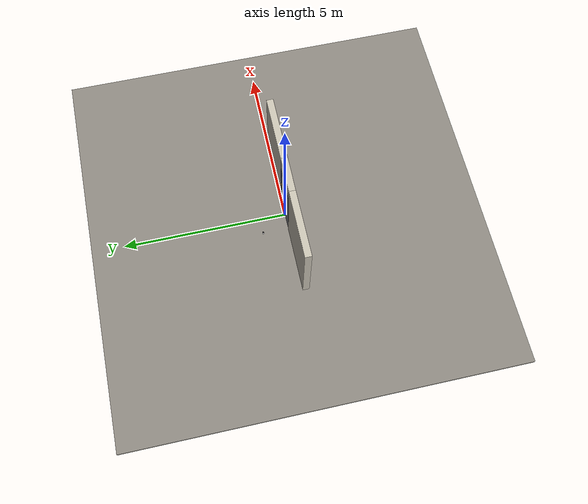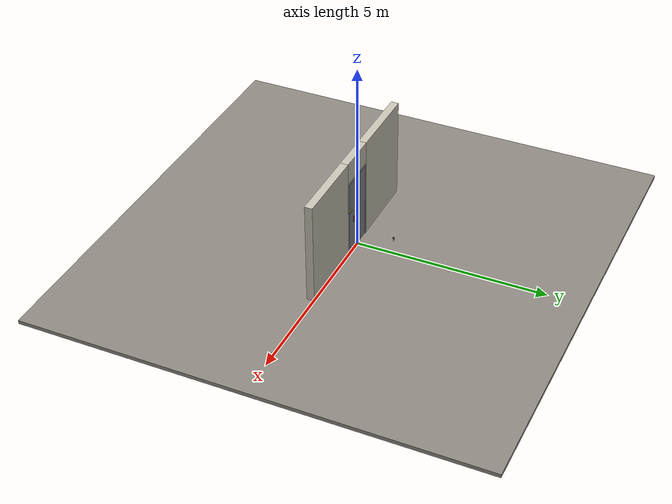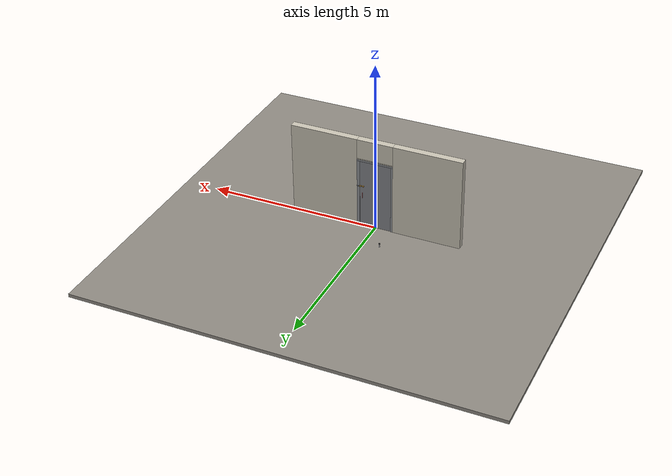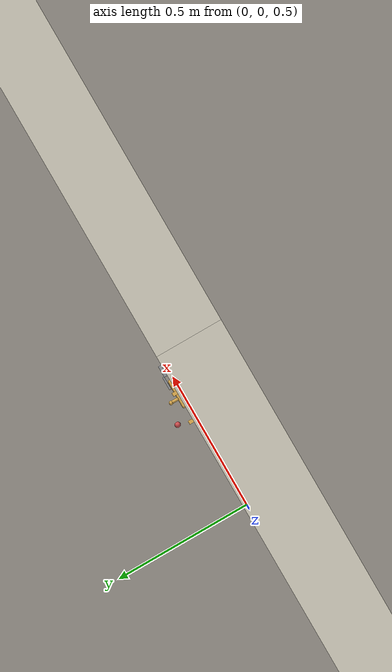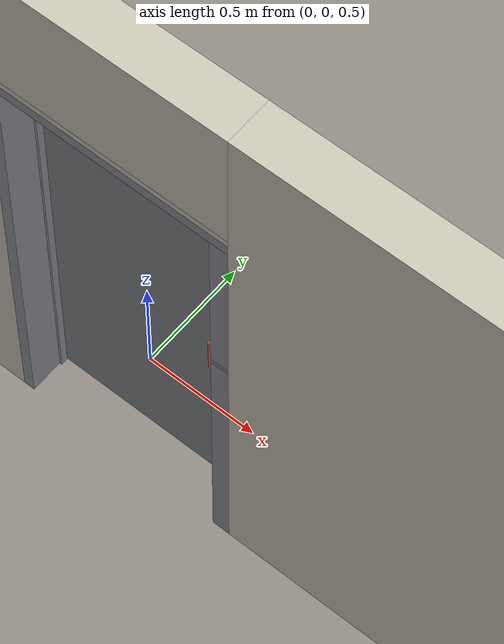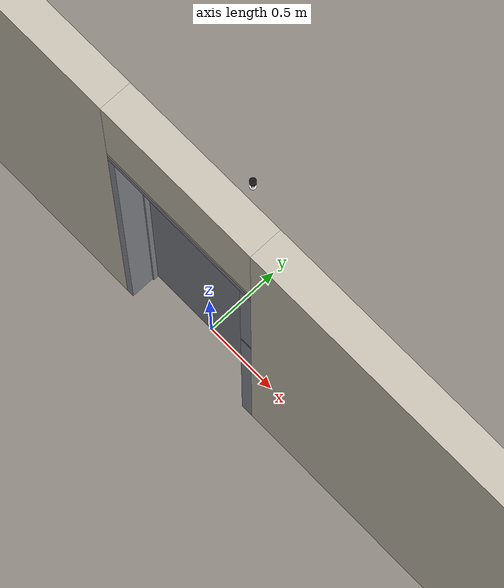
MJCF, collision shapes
<?xml version="1.0" ?>
<mujoco model="db0367_swing_single_full">
  <compiler angle="radian" meshdir="../../hardware" texturedir="../../textures" autolimits="true" inertiafromgeom="false"/>
  <option timestep="0.002" integrator="implicitfast" cone="elliptic" impratio="10" noslip_iterations="3">
    <flag multiccd="enable"/>
  </option>
  <size memory="16M"/>
  <default>
    <geom condim="4" solref="0.005 1" solimp="0.95 0.99 0.001"/>
    <joint solreflimit="0.005 1" solimplimit="0.95 0.99 0.001"/>
    <tendon solreflimit="0.005 1"/>
    <equality solref="0.002 1"/>
  </default>
  <visual>
    <headlight ambient="0.4 0.4 0.4" diffuse="0.7 0.7 0.7" specular="0.2 0.2 0.2"/>
    <quality shadowsize="4096"/>
    <map znear="0.01" zfar="60"/>
  </visual>
  <asset>
    <mesh name="hinge_ad5cafba81" file="hinge_ad5cafba81.obj"/>
    <mesh name="hinge_jamb_9cff33df86" file="hinge_jamb_9cff33df86.obj"/>
    <mesh name="pull_1e5d69a91a" file="pull_1e5d69a91a.obj"/>
    <material name="mat_floor" rgba="0.55 0.53 0.5 1" specular="0.2" shininess="0.15" reflectance="0"/>
    <material name="mat_wall" rgba="0.78 0.76 0.7 1" specular="0.2" shininess="0.1" reflectance="0"/>
    <material name="mat_leaf" rgba="0.5 0.51 0.53 1" specular="0.23" shininess="0.48" reflectance="0.02"/>
    <material name="mat_hinge" rgba="0.65 0.66 0.68 1" specular="0.74" shininess="0.5" reflectance="0.36"/>
    <material name="mat_op_stainless" rgba="0.75 0.76 0.77 1" specular="0.8" shininess="0.65" reflectance="0.4"/>
    <material name="mat_op_brass" rgba="0.85 0.66 0.3 1" specular="0.8" shininess="0.75" reflectance="0.4"/>
    <material name="mat_frame" rgba="0.55 0.56 0.58 1" specular="0.8" shininess="0.55" reflectance="0.4"/>
    <material name="mat_bumper_stop" rgba="0.08 0.08 0.08 1" specular="0.2" shininess="0.1" reflectance="0"/>
    <material name="mat_stop_base" rgba="0.9 0.9 0.92 1" specular="0.8" shininess="0.9" reflectance="0.4"/>
    <texture name="skybox" type="skybox" builtin="gradient" rgb1="0.6 0.7 0.85" rgb2="0.9 0.92 0.95" width="256" height="256"/>
  </asset>
  <worldbody>
    <light name="sun" pos="1.5 -2.5 4" dir="-0.3 0.5 -0.8" directional="true" diffuse="0.8 0.8 0.8" specular="0.3 0.3 0.3" castshadow="true"/>
    <light name="fill" pos="-1.5 2.5 3" dir="0.3 -0.5 -0.7" directional="true" diffuse="0.35 0.35 0.4" castshadow="false"/>
    <camera name="robot_view" pos="0 -2.632187 1.734312" xyaxes="1 0 0 0 0.26963 0.962964" fovy="52"/>
    <camera name="far_view" pos="0 2.452187 1.734312" xyaxes="-1 0 0 0 -0.26963 0.962964" fovy="52"/>
    <camera name="iso" pos="1.932062 -2.225437 2.141063" xyaxes="0.741536 0.670913 0 -0.242917 0.268487 0.932151" fovy="46"/>
    <camera name="detail_handle" pos="0.532 -0.863 1.296" xyaxes="0.97561 0.219512 0 -0.070934 0.315262 0.94635" fovy="38"/>
    <geom name="floor" type="box" size="6 6 0.05" pos="0 0 -0.05" material="mat_floor" group="0" contype="1" conaffinity="1" friction="0.8 0.005 0.0001" density="2400"/>
    <geom name="wall_left" type="box" size="0.995 0.1 1.35" pos="-1.505 -0.09 1.35" material="mat_wall" group="0" contype="1" conaffinity="1" friction="0.6 0.005 0.0001" density="800"/>
    <geom name="wall_right" type="box" size="0.98 0.1 1.35" pos="1.52 -0.09 1.35" material="mat_wall" group="0" contype="1" conaffinity="1" friction="0.6 0.005 0.0001" density="800"/>
    <geom name="wall_header" type="box" size="0.525 0.1 0.2875" pos="0.015 -0.09 2.4125" material="mat_wall" group="0" contype="1" conaffinity="1" friction="0.6 0.005 0.0001" density="800"/>
    <geom name="hinge_0_jamb" type="mesh" mesh="hinge_jamb_9cff33df86" pos="-0.457 0.01 0.259" quat="0 1 0 0" material="mat_hinge" group="1" contype="0" conaffinity="0" density="7850"/>
    <geom name="hinge_1_jamb" type="mesh" mesh="hinge_jamb_9cff33df86" pos="-0.457 0.01 1.025" quat="0 1 0 0" material="mat_hinge" group="1" contype="0" conaffinity="0" density="7850"/>
    <geom name="hinge_2_jamb" type="mesh" mesh="hinge_jamb_9cff33df86" pos="-0.457 0.01 1.861" quat="0 1 0 0" material="mat_hinge" group="1" contype="0" conaffinity="0" density="7850"/>
    <geom name="leaf_aux_bolt_keeper_b" type="box" size="0.014 0.003 0.0005" pos="0.4595 0.015 1.253" quat="-0.5 -0.5 0.5 0.5" material="mat_op_brass" group="1" contype="0" conaffinity="0" density="7800"/>
    <geom name="leaf_aux_bolt_keeper_l" type="box" size="0.003 0.01 0.0005" pos="0.4595 0.026 1.266" quat="-0.5 -0.5 0.5 0.5" material="mat_op_brass" group="1" contype="0" conaffinity="0" density="7800"/>
    <geom name="leaf_aux_bolt_keeper_t" type="box" size="0.014 0.003 0.0005" pos="0.4595 0.015 1.279" quat="-0.5 -0.5 0.5 0.5" material="mat_op_brass" group="1" contype="0" conaffinity="0" density="7800"/>
    <geom name="leaf_aux_bolt_keeper_r" type="box" size="0.003 0.01 0.0005" pos="0.4595 0.004 1.266" quat="-0.5 -0.5 0.5 0.5" material="mat_op_brass" group="1" contype="0" conaffinity="0" density="7800"/>
    <geom name="jamb_hinge" type="box" size="0.025 0.1 1.0225" pos="-0.485 -0.09 1.0225" material="mat_frame" group="0" contype="1" conaffinity="1" friction="0.6 0.005 0.0001" density="300"/>
    <geom name="strike_1266_wall_n" type="box" size="0.04 0.0985 0.01" pos="0.5 -0.0915 1.266" material="mat_frame" group="0" contype="1" conaffinity="1" friction="0.6 0.005 0.0001" density="300"/>
    <geom name="strike_1266_wall_p" type="box" size="0.022 0.003 0.01" pos="0.482 0.026 1.266" material="mat_frame" group="0" contype="1" conaffinity="1" friction="0.6 0.005 0.0001" density="300"/>
    <geom name="strike_1266_back" type="box" size="0.019 0.008 0.01" pos="0.521 0.015 1.266" material="mat_frame" group="0" contype="1" conaffinity="1" friction="0.6 0.005 0.0001" density="300"/>
    <geom name="jamb_strike_0" type="box" size="0.04 0.1 0.628" pos="0.5 -0.09 0.628" material="mat_frame" group="0" contype="1" conaffinity="1" friction="0.6 0.005 0.0001" density="300"/>
    <geom name="jamb_strike_1" type="box" size="0.04 0.1 0.3845" pos="0.5 -0.09 1.6605" material="mat_frame" group="0" contype="1" conaffinity="1" friction="0.6 0.005 0.0001" density="300"/>
    <geom name="jamb_head" type="box" size="0.525 0.1 0.025" pos="0.015 -0.09 2.07" material="mat_frame" group="0" contype="1" conaffinity="1" friction="0.6 0.005 0.0001" density="300"/>
    <geom name="head_stud" type="box" size="0.525 0.1 0.015" pos="0.015 -0.09 2.11" material="mat_wall" group="0" contype="1" conaffinity="1" friction="0.6 0.005 0.0001" density="500"/>
    <geom name="stop_hinge" type="box" size="0.0055 0.016 1.0225" pos="-0.4545 -0.0195 1.0225" material="mat_frame" group="0" contype="1" conaffinity="1" friction="0.6 0.005 0.0001" density="300"/>
    <geom name="stop_strike" type="box" size="0.0055 0.016 1.0225" pos="0.4545 -0.0195 1.0225" material="mat_frame" group="0" contype="1" conaffinity="1" friction="0.6 0.005 0.0001" density="300"/>
    <geom name="stop_head" type="box" size="0.46 0.016 0.0055" pos="0 -0.0195 2.0395" material="mat_frame" group="0" contype="1" conaffinity="1" friction="0.6 0.005 0.0001" density="300"/>
    <geom name="door_stop_base" type="cylinder" size="0.022 0.003" pos="-0.473 0.7869 0.003" material="mat_stop_base" group="0" contype="1" conaffinity="1" friction="0.6 0.005 0.0001" density="7850"/>
    <geom name="door_stop_post" type="cylinder" size="0.012 0.0245" pos="-0.473 0.7869 0.0305" material="mat_stop_base" group="0" contype="1" conaffinity="1" friction="0.6 0.005 0.0001" density="7850"/>
    <geom name="door_stop_bumper" type="cylinder" size="0.022 0.02" pos="-0.473 0.7869 0.075" material="mat_bumper_stop" group="0" contype="1" conaffinity="1" friction="0.6 0.005 0.0001" density="1100"/>
    <site name="approach_point" pos="0 -1.5 0" quat="1 0 0 0" size="0.05" rgba="0.2 0.9 0.2 0.5" group="4"/>
    <site name="goal_point" pos="0 1.5 0" quat="1 0 0 0" size="0.05" rgba="0.2 0.9 0.2 0.5" group="4"/>
    <site name="door_plane_center" pos="0 0 1.0225" quat="1 0 0 0" size="0.02" rgba="0.2 0.9 0.2 0.5" group="4"/>
    <body name="leaf" pos="-0.46 0 0">
      <inertial pos="0.460829 0.000086 1.025421" mass="88.994597" quat="0.500119 0.499928 -0.500064 0.499888" diaginertia="6.347123182 30.337314018 36.677897696"/>
      <joint name="leaf_hinge" type="hinge" axis="0 0 1" pos="0.003 0.01 0" limited="true" range="0 1.570796" damping="0.30611" frictionloss="1.101299" armature="0.02"/>
      <geom name="leaf_slab" type="box" size="0.457 0.003 1.016" pos="0.46 0 1.025" material="mat_leaf" group="0" contype="1" conaffinity="1" friction="0.45 0.005 0.0001" density="1"/>
      <geom name="hinge_0" type="mesh" mesh="hinge_ad5cafba81" pos="0.003 0.01 0.259" quat="0 1 0 0" material="mat_hinge" group="1" contype="0" conaffinity="0" density="7850"/>
      <geom name="hinge_1" type="mesh" mesh="hinge_ad5cafba81" pos="0.003 0.01 1.025" quat="0 1 0 0" material="mat_hinge" group="1" contype="0" conaffinity="0" density="7850"/>
      <geom name="hinge_2" type="mesh" mesh="hinge_ad5cafba81" pos="0.003 0.01 1.861" quat="0 1 0 0" material="mat_hinge" group="1" contype="0" conaffinity="0" density="7850"/>
      <geom name="leaf_pull_n" type="mesh" mesh="pull_1e5d69a91a" pos="0.812 -0.003 1.016" quat="0.707107 0.707107 0 0" material="mat_op_stainless" group="1" contype="0" conaffinity="0" density="3000"/>
      <geom name="leaf_pull_col_n" type="capsule" size="0.0095 0.08" pos="0.812 -0.063 1.016" material="mat_op_stainless" group="3" contype="1" conaffinity="1" rgba="0.8 0.3 0.3 0.25" friction="0.7 0.01 0.0001" density="3000"/>
      <geom name="leaf_pull_p" type="mesh" mesh="pull_1e5d69a91a" pos="0.812 0.003 1.016" quat="-0.707107 0.707107 0 0" material="mat_op_stainless" group="1" contype="0" conaffinity="0" density="3000"/>
      <geom name="leaf_pull_col_p" type="capsule" size="0.0095 0.08" pos="0.812 0.063 1.016" material="mat_op_stainless" group="3" contype="1" conaffinity="1" rgba="0.8 0.3 0.3 0.25" friction="0.7 0.01 0.0001" density="3000"/>
      <geom name="leaf_aux_bolt_plate" type="box" size="0.0595 0.019 0.001" pos="0.8495 0.004 1.266" quat="0.707107 -0.707107 0 0" material="mat_op_brass" group="1" contype="0" conaffinity="0" density="7800"/>
      <geom name="leaf_aux_bolt_guide_0_leg_n" type="box" size="0.006 0.002 0.0125" pos="0.901 0.0155 1.277" quat="0.707107 -0.707107 0 0" material="mat_op_brass" group="1" contype="0" conaffinity="0" density="7800"/>
      <geom name="leaf_aux_bolt_guide_0_leg_p" type="box" size="0.006 0.002 0.0125" pos="0.901 0.0155 1.255" quat="0.707107 -0.707107 0 0" material="mat_op_brass" group="1" contype="0" conaffinity="0" density="7800"/>
      <geom name="leaf_aux_bolt_guide_0_bridge" type="box" size="0.006 0.013 0.002" pos="0.901 0.026 1.266" quat="0.707107 -0.707107 0 0" material="mat_op_brass" group="1" contype="0" conaffinity="0" density="7800"/>
      <geom name="leaf_aux_bolt_guide_1_leg_n" type="box" size="0.006 0.002 0.0125" pos="0.8 0.0155 1.277" quat="0.707107 -0.707107 0 0" material="mat_op_brass" group="1" contype="0" conaffinity="0" density="7800"/>
      <geom name="leaf_aux_bolt_guide_1_leg_p" type="box" size="0.006 0.002 0.0125" pos="0.8 0.0155 1.255" quat="0.707107 -0.707107 0 0" material="mat_op_brass" group="1" contype="0" conaffinity="0" density="7800"/>
      <geom name="leaf_aux_bolt_guide_1_bridge" type="box" size="0.006 0.013 0.002" pos="0.8 0.026 1.266" quat="0.707107 -0.707107 0 0" material="mat_op_brass" group="1" contype="0" conaffinity="0" density="7800"/>
      <site name="leaf_pull_grip_n" pos="0.812 -0.063 1.016" quat="1 0 0 0" size="0.012" rgba="0.2 0.9 0.2 0.5" group="4"/>
      <site name="leaf_pull_grip_p" pos="0.812 0.063 1.016" quat="1 0 0 0" size="0.012" rgba="0.2 0.9 0.2 0.5" group="4"/>
      <site name="leaf_edge_mid" pos="0.917 0 1.016" quat="1 0 0 0" size="0.02" rgba="0.2 0.9 0.2 0.5" group="4"/>
      <body name="leaf_aux_bolt" pos="0.917 0.015 1.266">
        <inertial pos="-0.023563 0.00492 0" mass="0.111784" quat="0.998595 0 0 -0.05299" diaginertia="0.000012212 0.000071985 0.000082309"/>
        <joint name="leaf_aux_bolt_slide" type="slide" axis="-1 0 0" limited="true" range="0 0.001" damping="1" frictionloss="1" armature="0.1"/>
        <geom name="leaf_aux_bolt_rod" type="capsule" size="0.006 0.044" pos="-0.02 0 0" quat="0.707107 0 0.707107 0" material="mat_op_brass" group="0" contype="1" conaffinity="1" friction="0.6 0.005 0.0001" density="7850"/>
        <geom name="leaf_aux_bolt_knob" type="capsule" size="0.005 0.01" pos="-0.035 0.015 0" quat="0.707107 -0.707107 0 0" material="mat_op_brass" group="0" contype="1" conaffinity="1" friction="0.6 0.005 0.0001" density="7850"/>
        <geom name="leaf_aux_bolt_knob_end" type="sphere" size="0.00675" pos="-0.035 0.03 0" material="mat_op_brass" group="1" contype="0" conaffinity="0" density="7850"/>
        <site name="leaf_aux_bolt_grip" pos="-0.035 0.034 0" quat="1 0 0 0" size="0.012" rgba="0.2 0.9 0.2 0.5" group="4"/>
      </body>
    </body>
  </worldbody>
  <sensor>
    <jointpos name="leaf_hinge_pos" joint="leaf_hinge"/>
    <jointvel name="leaf_hinge_vel" joint="leaf_hinge"/>
    <jointpos name="leaf_aux_bolt_slide_pos" joint="leaf_aux_bolt_slide"/>
    <jointvel name="leaf_aux_bolt_slide_vel" joint="leaf_aux_bolt_slide"/>
  </sensor>
</mujoco>
